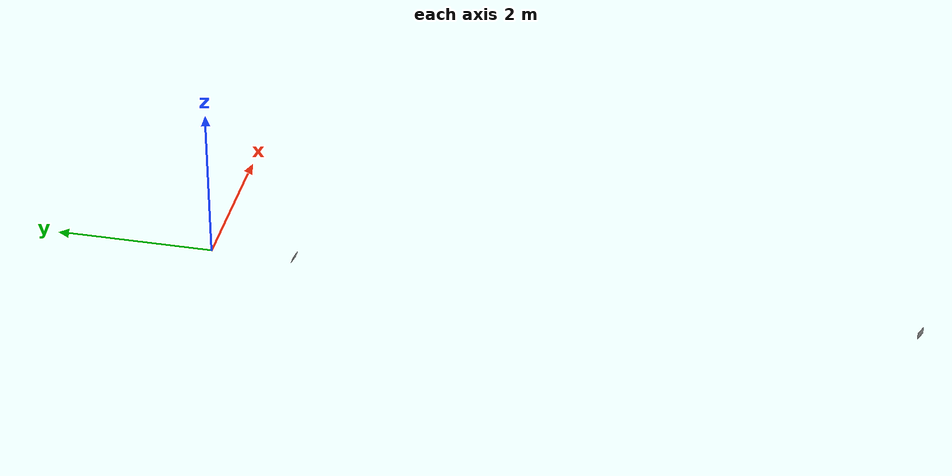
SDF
<sdf version='1.6'>
  <model name='start_end_marker'>
  <static>true</static>
    <link name='base_link'>
      <visual name='base_link_visual'>
        <pose frame=''>0 0 0 0 0 0</pose>
        <geometry>
          <mesh>
            <scale>1 1 1</scale>
            <uri>model://start_end_marker/start_end.dae</uri>
          </mesh>
        </geometry>
      </visual>
    </link>
  </model>
</sdf>
